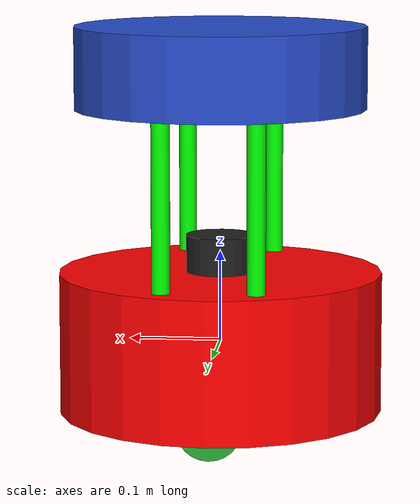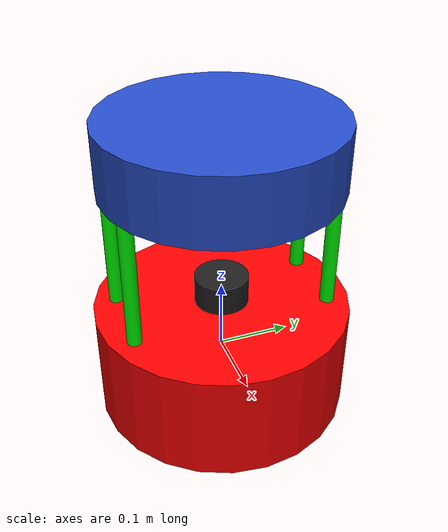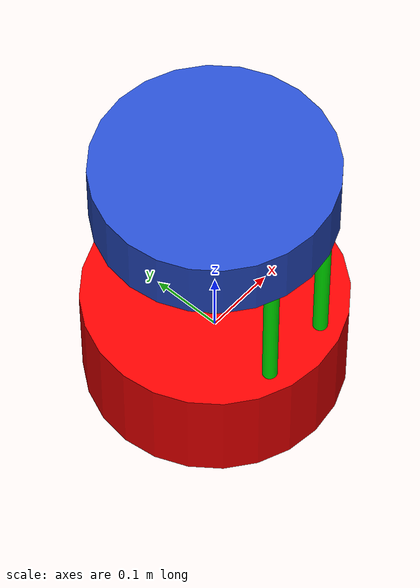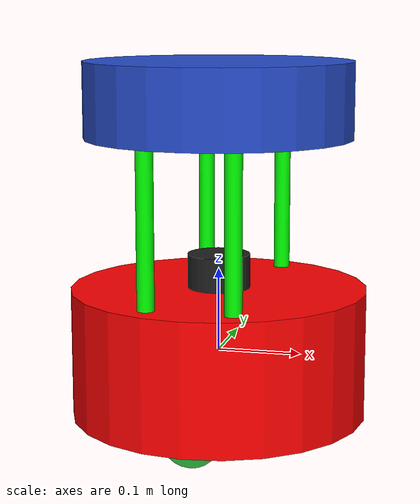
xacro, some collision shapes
<?xml version="1.0"?>
<robot xmlns:xacro="http://www.ros.org/wiki/xacro" name="barista_robot">

    <xacro:include filename="$(find barista_robot_description)/xacro/wheel.xacro"/>
    <xacro:include filename="$(find barista_robot_description)/xacro/standoff.xacro"/>
    <xacro:include filename="$(find barista_robot_description)/xacro/cup_holder_tray.xacro"/>

    <!-- Materials -->
    <material name="red">
        <color rgba="1 0 0 1"/>
    </material>
    <material name="green">
        <color rgba="0 1 0 1"/>
    </material>
    <material name="blue">
        <color rgba="0 0 1 1"/>
    </material>
    <material name="yellow">
        <color rgba="1 1 0 1"/>
    </material>
    <material name="purple">
        <color rgba="0.5 0 0.5 1"/>
    </material>
    <material name="orange">
        <color rgba="1 0.65 0 1"/>
    </material>
    <material name="black">
        <color rgba="0 0 0 1"/>
    </material>

    <!-- LINKS -->
    <!-- Main Body -->
    <link name="base_link">
        <visual>
            <geometry>
                <cylinder radius="0.178" length="0.155"/>
            </geometry>
            <material name="red"/>
        </visual>
        <collision>
            <geometry>
                <cylinder radius="0.178" length="0.155"/>
            </geometry>
        </collision>
        <inertial>
            <mass value="5.0"/>
            <origin xyz="0 0 0.0775"/>
            <inertia ixx="0.04961541666666667" ixy="0.0" ixz="0.0" iyy="0.04961541666666667" iyz="0.0" izz="0.07920999999999999"/>
        </inertial>
    </link>

    <gazebo reference="base_link">
        <material>Gazebo/DarkGrey</material>
    </gazebo>

    <!-- Wheels -->
    <!-- Wheel Left -->
    <xacro:wheel wheel_name="motorized_wheel_left" />

    <gazebo reference="motorized_wheel_left">
        <kp>1000000000000000000000000000.0</kp>
        <kd>1000000000000000000000000000.0</kd>
        <mu1>10.0</mu1>
        <mu2>10.0</mu2>
        <material>Gazebo/Green</material>
    </gazebo>

    <!-- Wheel Right -->
    <xacro:wheel wheel_name="motorized_wheel_right" />

    <gazebo reference="motorized_wheel_right">
        <kp>1000000000000000000000000000.0</kp>
        <kd>1000000000000000000000000000.0</kd>
        <mu1>10.0</mu1>
        <mu2>10.0</mu2>
        <material>Gazebo/Green</material>
    </gazebo>

<!-- Caster Wheels -->
    <!-- Caster Wheel Front -->
    <link name="front_yaw_link">
      <visual>
        <origin rpy="0 1.5707 1.5707" xyz="0 0 0"/>
        <geometry>
            <cylinder radius="0.0125000000000000005" length="0.001"/>
        </geometry>
        <material name="blue"/>
      </visual>

      <collision>
        <origin rpy="0 1.5707 1.5707" xyz="0 0 0"/>
        <geometry>
            <cylinder radius="0.0125000000000000005" length="0.001"/>
        </geometry>
      </collision>

      <inertial>
          <origin rpy="0 1.5707 1.5707" xyz="0 0 0"/>
          <mass value="0.001"/>
          <inertia ixx="3.914583333333334e-08" ixy="0" ixz="0" iyy="3.914583333333334e-08" iyz="0" izz="7.812500000000002e-08"/>
      </inertial>
    </link>

    <gazebo reference="front_yaw_link">
        <material>Gazebo/Blue</material>
    </gazebo>

    <link name="front_roll_link">
        <visual>
            <origin rpy="0 1.5707 1.5707" xyz="0 0 0"/>
            <geometry>
                <cylinder radius="0.0125000000000000005" length="0.001"/>
            </geometry>
            <material name="purple"/>
        </visual>

        <collision>
            <origin rpy="0 1.5707 1.5707" xyz="0 0 0"/>
            <geometry>
                <cylinder radius="0.0125000000000000005" length="0.001"/>
            </geometry>
        </collision>

        <inertial>
            <origin rpy="0 1.5707 1.5707" xyz="0 0 0"/>
            <mass value="0.001"/>
          <inertia ixx="3.914583333333334e-08" ixy="0" ixz="0" iyy="3.914583333333334e-08" iyz="0" izz="7.812500000000002e-08"/>
        </inertial>
    </link>

    <gazebo reference="front_roll_link">
        <material>Gazebo/Red</material>
    </gazebo>

    <link name="front_pitch_link">
        <visual>
        <origin rpy="0 1.5707 1.5707" xyz="0 0 0"/>
        <geometry>
            <sphere radius="0.0252"/>
        </geometry>
        <material name="green"/>
        </visual>

        <collision>
        <origin rpy="0 1.5707 1.5707" xyz="0 0 0"/>
        <geometry>
            <sphere radius="0.0252"/>
        </geometry>
        </collision>

        <inertial>
            <origin rpy="0 1.5707 1.5707" xyz="0 0 0"/>
            <mass value="0.1"/>
            <inertia ixx="2.5401600000000004e-05" ixy="0" ixz="0" iyy="2.5401600000000004e-05" iyz="0" izz="2.5401600000000004e-05"/>
        </inertial>
    </link>

    <gazebo reference="front_pitch_link">
        <kp>1000000000000000000000000000.0</kp>
        <kd>1000000000000000000000000000.0</kd>
        <mu1>0.5</mu1>
        <mu2>0.5</mu2>
        <material>Gazebo/Purple</material>
    </gazebo>

    <!-- Caster Wheel Back -->
    <link name="back_yaw_link">
        <visual>
            <origin rpy="0 1.5707 1.5707" xyz="0 0 0"/>
            <geometry>
                <cylinder radius="0.0125000000000000005" length="0.001"/>
            </geometry>
            <material name="blue"/>
        </visual>

        <collision>
            <origin rpy="0 1.5707 1.5707" xyz="0 0 0"/>
            <geometry>
                <cylinder radius="0.0125000000000000005" length="0.001"/>
            </geometry>
        </collision>

        <inertial>
            <origin rpy="0 1.5707 1.5707" xyz="0 0 0"/>
            <mass value="0.001"/>
            <inertia ixx="3.914583333333334e-08" ixy="0" ixz="0" iyy="3.914583333333334e-08" iyz="0" izz="7.812500000000002e-08"/>
        </inertial>
    </link>

    <gazebo reference="back_yaw_link">
        <material>Gazebo/Blue</material>
    </gazebo>

    <link name="back_roll_link">
        <visual>
            <origin rpy="0 1.5707 1.5707" xyz="0 0 0"/>
            <geometry>
                <cylinder radius="0.0125000000000000005" length="0.001"/>
            </geometry>
            <material name="red"/>
        </visual>

        <collision>
            <origin rpy="0 1.5707 1.5707" xyz="0 0 0"/>
            <geometry>
                <cylinder radius="0.0125000000000000005" length="0.001"/>
            </geometry>
        </collision>

        <inertial>
            <origin rpy="0 1.5707 1.5707" xyz="0 0 0"/>
            <mass value="0.001"/>
            <inertia ixx="3.914583333333334e-08" ixy="0" ixz="0" iyy="3.914583333333334e-08" iyz="0" izz="7.812500000000002e-08"/>
        </inertial>
    </link>

    <gazebo reference="back_roll_link">
        <material>Gazebo/Red</material>
    </gazebo>

    <link name="back_pitch_link">
        <visual>
        <origin rpy="0 1.5707 1.5707" xyz="0 0 0"/>
        <geometry>
            <sphere radius="0.0252"/>
        </geometry>
        <material name="purple"/>
        </visual>

        <collision>
            <origin rpy="0 1.5707 1.5707" xyz="0 0 0"/>
            <geometry>
                <sphere radius="0.0252"/>
            </geometry>
        </collision>

        <inertial>
            <origin rpy="0 1.5707 1.5707" xyz="0 0 0"/>
            <mass value="0.1"/>
            <inertia ixx="2.5401600000000004e-05" ixy="0" ixz="0" iyy="2.5401600000000004e-05" iyz="0" izz="2.5401600000000004e-05"/>
        </inertial>
    </link>

    <gazebo reference="back_pitch_link">
        <kp>1000000000000000000000000000.0</kp>
        <kd>1000000000000000000000000000.0</kd>
        <mu1>0.5</mu1>
        <mu2>0.5</mu2>
        <material>Gazebo/Yellow</material>
    </gazebo>

    <xacro:standoff_rod standoff_rod_name="standoff_rod_1" />

    <gazebo reference="standoff_rod_1">
        <material>Gazebo/Black</material>
    </gazebo>

    <xacro:standoff_rod standoff_rod_name="standoff_rod_2" />

    <gazebo reference="standoff_rod_2">
        <material>Gazebo/Black</material>
    </gazebo>

    <xacro:standoff_rod standoff_rod_name="standoff_rod_3" />

    <gazebo reference="standoff_rod_3">
        <material>Gazebo/Black</material>
    </gazebo>

    <xacro:standoff_rod standoff_rod_name="standoff_rod_4" />

    <gazebo reference="standoff_rod_4">
        <material>Gazebo/Black</material>
    </gazebo>

   <xacro:cup_holder_tray cup_holder_tray_name="cup_holder_tray" />

    <gazebo reference="cup_holder_tray">
        <material>Gazebo/Blue</material>
    </gazebo>

<!-- JOINTS -->
    <!-- Motorized Wheels -->
    <joint name="base_to_wheel_left" type="continuous">
        <parent link="base_link"/>
        <child link="motorized_wheel_left"/>
        <origin rpy="0 0 0" xyz="0 0.128 -0.067"/>
        <axis xyz="0 1 0"/>
        <limit effort="1.0" velocity="10.0"/>
        <dynamics damping="0.1" friction="0.1"/>
    </joint>

    <joint name="base_to_wheel_right" type="continuous">
        <parent link="base_link"/>
        <child link="motorized_wheel_right"/>
        <origin rpy="0 0 0" xyz="0 -0.128 -0.067"/>
        <axis xyz="0 1 0"/>
        <limit effort="1.0" velocity="10.0"/>
        <dynamics damping="0.1" friction="0.1"/>
    </joint>

    <!-- Caster Wheels -->
    <joint name="front_yaw_joint" type="continuous">
        <parent link="base_link" />
        <child link="front_yaw_link" />
        <origin rpy="0 0 0" xyz="0.128 0 -0.077" />
        <axis xyz="0 0 1" />
        <limit effort="1000.0" velocity="100.0" />
        <dynamics damping="0.0" friction="0.1"/>
    </joint>

    <joint name="front_roll_joint" type="continuous">
        <parent link="front_yaw_link" />
        <child link="front_roll_link" />
        <origin rpy="0 0 0" xyz="0 0 0" />
        <axis xyz="1 0 0" />
        <limit effort="1000.0" velocity="100.0" />
        <dynamics damping="0.0" friction="0.1"/>
    </joint>

    <joint name="front_pitch_joint" type="continuous">
        <parent link="front_roll_link" />
        <child link="front_pitch_link" />
        <origin rpy="0 0 0" xyz="0 0 0" />
        <axis xyz="0 1 0" />
        <limit effort="1000.0" velocity="100.0" />
        <dynamics damping="0.0" friction="0.1"/>
    </joint>

    <joint name="back_yaw_joint" type="continuous">
        <parent link="base_link" />
        <child link="back_yaw_link" />
        <origin rpy="0 0 0" xyz="-0.128 0 -0.077" />
        <axis xyz="0 0 1" />
        <limit effort="1000.0" velocity="100.0" />
        <dynamics damping="0.0" friction="0.1"/>
    </joint>

    <joint name="back_roll_joint" type="continuous">
        <parent link="back_yaw_link" />
        <child link="back_roll_link" />
        <origin rpy="0 0 0" xyz="0 0 0" />
        <axis xyz="1 0 0" />
        <limit effort="1000.0" velocity="100.0" />
        <dynamics damping="0.0" friction="0.1"/>
    </joint>

    <joint name="back_pitch_joint" type="continuous">
        <parent link="back_roll_link" />
        <child link="back_pitch_link" />
        <origin rpy="0 0 0" xyz="0 0 0" />
        <axis xyz="0 1 0" />
        <limit effort="1000.0" velocity="100.0" />
        <dynamics damping="0.0" friction="0.1"/>
    </joint>

    <!-- Standoff Rods -->
    <joint name="base_to_standoff_rod_1" type="fixed">
        <parent link="base_link"/>
        <child link="standoff_rod_1"/>
        <origin xyz="0.05 0.138 0.165" rpy="0 0 0"/>
    </joint>

    <joint name="base_to_standoff_rod_2" type="fixed">
        <parent link="base_link"/>
        <child link="standoff_rod_2"/>
        <origin xyz="-0.05 0.138 0.165" rpy="0 0 0"/>
    </joint>

    <joint name="base_to_standoff_rod_3" type="fixed">
        <parent link="base_link"/>
        <child link="standoff_rod_3"/>
        <origin xyz="0.05 -0.138 0.165" rpy="0 0 0"/>
    </joint>

    <joint name="base_to_standoff_rod_4" type="fixed">
        <parent link="base_link"/>
        <child link="standoff_rod_4"/>
        <origin xyz="-0.05 -0.138 0.165" rpy="0 0 0"/>
    </joint>

    <joint name="base_to_cup_holder_tray" type="fixed">
        <parent link="base_link"/>
        <child link="cup_holder_tray"/>
        <origin xyz="0 0 0.3025" rpy="0 0 0"/>
    </joint>

<!-- PLUGINS -->
    <!-- JOINT PUBLISHER -->
    <gazebo>
        <plugin name="barista_robot_joint_state_publisher" filename="libgazebo_ros_joint_state_publisher.so">
            <ros>
                <remapping>~/out:=joint_states</remapping>
            </ros>
            <update_rate>30</update_rate>

            <joint_name>base_to_wheel_left</joint_name>
            <joint_name>base_to_wheel_right</joint_name>
            <joint_name>front_yaw_joint</joint_name>
            <joint_name>back_yaw_joint</joint_name>
            <joint_name>front_roll_joint</joint_name>
            <joint_name>back_roll_joint</joint_name>
            <joint_name>front_pitch_joint</joint_name>
            <joint_name>back_pitch_joint</joint_name>
        </plugin>
    </gazebo>

    <!-- Differential drive -->
    <gazebo>
        <plugin name="differential_drive_controller" filename="libgazebo_ros_diff_drive.so">

        <!-- wheels -->
        <left_joint>base_to_wheel_left</left_joint>
        <right_joint>base_to_wheel_right</right_joint>

        <!-- kinematics -->
        <wheel_separation>0.256</wheel_separation>
        <wheel_diameter>0.0704</wheel_diameter>

        <!-- limits -->
        <max_wheel_torque>4.0</max_wheel_torque>
        <max_wheel_acceleration>4.0</max_wheel_acceleration>

        <!-- output -->
        <publish_odom>true</publish_odom>
        <publish_odom_tf>true</publish_odom_tf>

        <odometry_frame>odom</odometry_frame>
        <robot_base_frame>base_link</robot_base_frame>

        </plugin>
    </gazebo>

    <!-- This plugin simulates the laser scanner sensor in Gazebo and publishes LaserScan data -->
    <!-- Define the property for include_laser -->
    <xacro:property name="include_laser" value="true"/>
    <!-- Macro for the laser scanner sensor -->
    <xacro:macro name="laser_scanner" params="include_laser:=true">
        <xacro:if value="${include_laser}">
            <!-- Laser Scanner -->
            <link name="laser_scan_link">
                <visual>
                    <origin rpy="0 0 0" xyz="0 0 0"/>
                    <geometry>
                        <mesh filename="package://barista_robot_description/meshes/LIDAR_2D_Sensor/rplidar_a2.dae" scale="1.0 1.0 1.0"/>
                    </geometry>
                </visual>
                <collision>
                    <origin rpy="0 0 0" xyz="0 0 0.0204"/>
                    <geometry>
                        <cylinder length="0.0408" radius="0.037493"/>
                    </geometry>
                </collision>
                <inertial>
                    <mass value="0.20"/>
                    <origin rpy="0 0 0" xyz="0 0 0.0204"/>
                    <inertia ixx="9.803025244999999e-05" ixy="0" ixz="0" iyy="9.803025244999999e-05" iyz="0" izz="0.00014057250489999998"/>
                </inertial>
            </link>

            <gazebo reference="laser_scan_link">
                <material>Gazebo/Black</material>
            </gazebo>

            <!-- Laser Scanner Frame for positioning the gazebo_ros_laser-->
            <link name="laser_scan_frame_link">
            </link>

            <joint name="laser_scan_link_joint" type="fixed">
                <parent link="base_link"/>
                <child link="laser_scan_link"/>
                <origin rpy="0 0 0" xyz="0 0 0.0775"/>
            </joint>

            <joint name="laser_scan_frame_joint" type="fixed">
                <parent link="laser_scan_link"/>
                <child link="laser_scan_frame_link"/>
                <origin rpy="0 0 0" xyz="0 0 0.0306"/>
            </joint>

            <gazebo reference="laser_scan_frame_link">
                <sensor name="sensor_ray" type="ray">
                    <pose>0 0 0 0 0 0</pose>
                    <ray>
                        <scan>
                            <horizontal>
                                <samples>720</samples>
                                <resolution>0.5</resolution>
                                <min_angle>-3.14</min_angle>
                                <max_angle>3.14</max_angle>
                            </horizontal>
                        </scan>
                        <range>
                            <min>0.15</min>
                            <max>12.0</max>
                        </range>
                    </ray>
                    <always_on>true</always_on>
                    <visualize>true</visualize>
                    <update_rate>30.0</update_rate>
                    <plugin name="laser" filename="libgazebo_ros_ray_sensor.so">
                        <ros>
                            <remapping>~/out:=scan</remapping>
                        </ros>
                        <output_type>sensor_msgs/LaserScan</output_type>
                    </plugin>
                </sensor>
            </gazebo>
        </xacro:if>
    </xacro:macro>

    <!-- Include the laser scanner sensor macro in the robot model -->
    <xacro:laser_scanner include_laser="${include_laser}"/>
</robot>

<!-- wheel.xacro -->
<robot xmlns:xacro="http://www.ros.org/wiki/xacro" name="barista_robot">

    <xacro:property name="wheel_width" value="0.0206"/>
    <xacro:property name="wheel_radius" value="0.0352"/>

    <!-- Wheel Macro -->
    <xacro:macro name="wheel" params="wheel_name">
        <link name="${wheel_name}">
            <visual>
                <origin rpy="1.5707 0 0" xyz="0 0 0"/>
                <geometry>
                <cylinder length="${wheel_width}" radius="${wheel_radius}"/>
                </geometry>
            </visual>

            <collision>
                <origin rpy="1.5707 0 0" xyz="0 0 0"/>
                <geometry>
                <cylinder length="${wheel_width}" radius="${wheel_radius}"/>
                </geometry>
            </collision>

            <inertial>
                <mass value="0.2"/>
                <origin rpy="1.5707 0 0" xyz="0 0 0"/>
                <inertia ixx="6.902466666666668e-05" ixy="0.0" ixz="0.0" iyy="6.902466666666668e-05" iyz="0.0" izz="0.000123904"/>
            </inertial>
        </link>
    </xacro:macro>

</robot>

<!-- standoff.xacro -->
<robot xmlns:xacro="http://www.ros.org/wiki/xacro" name="barista_robot">

    <xacro:property name="standoff_rod_length" value="0.26"/>
    <xacro:property name="standoff_rod_radius" value="0.01"/>

    <!-- Standoff rod Macro -->
    <xacro:macro name="standoff_rod" params="standoff_rod_name">
        <link name="${standoff_rod_name}">
            <visual>
                <geometry>
                    <cylinder radius="${standoff_rod_radius}" length="${standoff_rod_length}"/>
                </geometry>
                <material name="green"/>
            </visual>
            <collision>
                <geometry>
                    <cylinder radius="${standoff_rod_radius}" length="${standoff_rod_length}"/>
                </geometry>
            </collision>
            <inertial>
                <mass value="0.05"/>
                <origin xyz="0 0 0.13"/>
                <inertia ixx="0.00028291666666666667" ixy="0.0" ixz="0.0" iyy="0.00028291666666666667" iyz="0.0" izz="2.5e-06"/>
            </inertial>
        </link>
    </xacro:macro>

</robot>

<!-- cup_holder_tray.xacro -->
<robot xmlns:xacro="http://www.ros.org/wiki/xacro" name="barista_robot">

    <xacro:property name="cup_holder_tray_length" value="0.090"/>
    <xacro:property name="cup_holder_tray_radius" value="0.160"/>

    <!-- Cup Holder Tray Macro -->
    <xacro:macro name="cup_holder_tray" params="cup_holder_tray_name">
        <link name="${cup_holder_tray_name}">
            <visual>
                <geometry>
                    <cylinder length="${cup_holder_tray_length}" radius="${cup_holder_tray_radius}"/>
                </geometry>
                <material name="cup_holder_tray"/>
            </visual>

            <collision>
                <geometry>
                    <cylinder length="${cup_holder_tray_length}" radius="${cup_holder_tray_radius}"/>
                </geometry>
            </collision>

            <inertial>
                <mass value="2.0"/>
                <origin xyz="0 0 0.045"/>
                <inertia ixx="0.01415" ixy="0.0" ixz="0.0" iyy="0.01415" iyz="0.0" izz="0.0256"/>
            </inertial>
        </link>
    </xacro:macro>
</robot>
